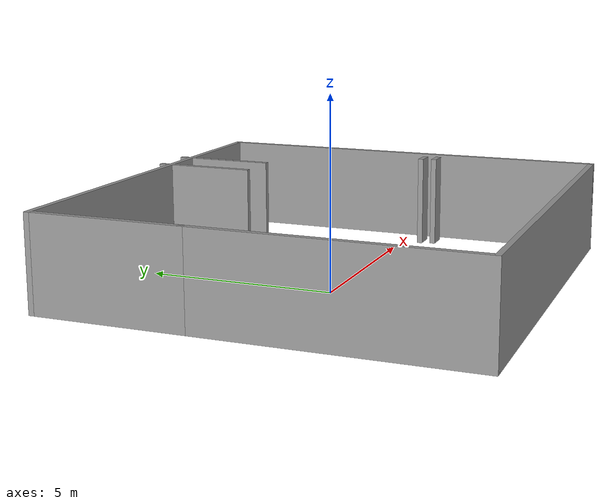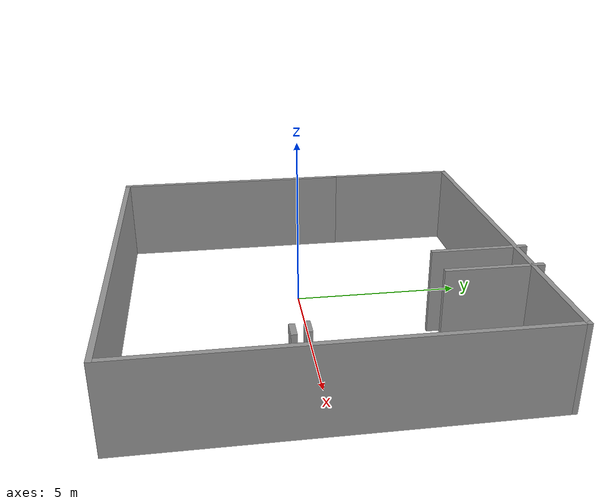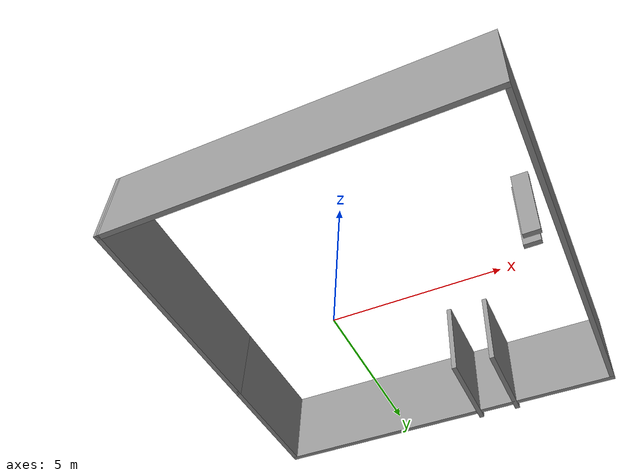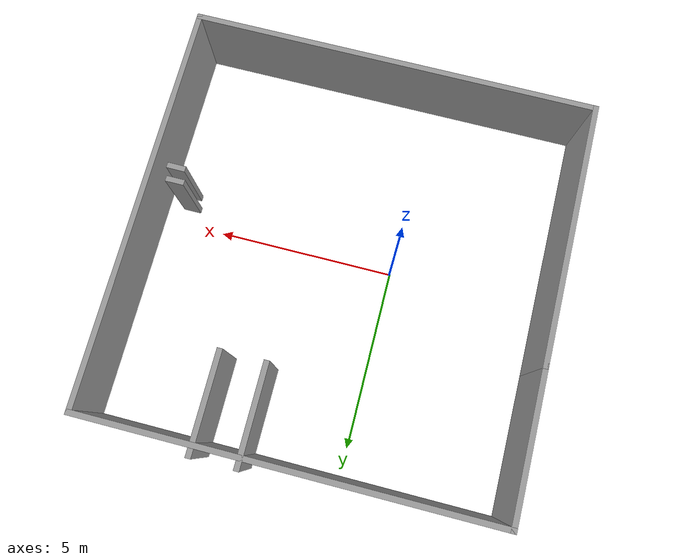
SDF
<?xml version='1.0'?>
<sdf version='1.7'>
  <model name='custom_world'>
    <pose>1.2678 0.28081 0 0 -0 0</pose>
    <link name='Wall_0'>
      <collision name='Wall_0_Collision'>
        <geometry>
          <box>
            <size>7.25 0.15 2.5</size>
          </box>
        </geometry>
        <pose>0 0 1.25 0 -0 0</pose>
      </collision>
      <visual name='Wall_0_Visual'>
        <pose>0 0 1.25 0 -0 0</pose>
        <geometry>
          <box>
            <size>7.25 0.15 2.5</size>
          </box>
        </geometry>
        <material>
          <script>
            <uri>file://media/materials/scripts/gazebo.material</uri>
            <name>Gazebo/Grey</name>
          </script>
          <ambient>1 1 1 1</ambient>
        </material>
        <meta>
          <layer>0</layer>
        </meta>
      </visual>
      <pose>-5.55 -2 0 0 -0 -1.5708</pose>
    </link>
    <link name='Wall_1'>
      <collision name='Wall_1_Collision'>
        <geometry>
          <box>
            <size>11.25 0.15 2.5</size>
          </box>
        </geometry>
        <pose>0 0 1.25 0 -0 0</pose>
      </collision>
      <visual name='Wall_1_Visual'>
        <pose>0 0 1.25 0 -0 0</pose>
        <geometry>
          <box>
            <size>11.25 0.15 2.5</size>
          </box>
        </geometry>
        <material>
          <script>
            <uri>file://media/materials/scripts/gazebo.material</uri>
            <name>Gazebo/Grey</name>
          </script>
          <ambient>1 1 1 1</ambient>
        </material>
        <meta>
          <layer>0</layer>
        </meta>
      </visual>
      <pose>-0 -5.55 0 0 -0 0</pose>
    </link>
    <link name='Wall_2'>
      <collision name='Wall_2_Collision'>
        <geometry>
          <box>
            <size>11.25 0.15 2.5</size>
          </box>
        </geometry>
        <pose>0 0 1.25 0 -0 0</pose>
      </collision>
      <visual name='Wall_2_Visual'>
        <pose>0 0 1.25 0 -0 0</pose>
        <geometry>
          <box>
            <size>11.25 0.15 2.5</size>
          </box>
        </geometry>
        <material>
          <script>
            <uri>file://media/materials/scripts/gazebo.material</uri>
            <name>Gazebo/Grey</name>
          </script>
          <ambient>1 1 1 1</ambient>
        </material>
        <meta>
          <layer>0</layer>
        </meta>
      </visual>
      <pose>5.55 0 0 0 -0 1.5708</pose>
    </link>
    <link name='Wall_3'>
      <collision name='Wall_3_Collision'>
        <geometry>
          <box>
            <size>11.25 0.15 2.5</size>
          </box>
        </geometry>
        <pose>0 0 1.25 0 -0 0</pose>
      </collision>
      <visual name='Wall_3_Visual'>
        <pose>0 0 1.25 0 -0 0</pose>
        <geometry>
          <box>
            <size>11.25 0.15 2.5</size>
          </box>
        </geometry>
        <material>
          <script>
            <uri>file://media/materials/scripts/gazebo.material</uri>
            <name>Gazebo/Grey</name>
          </script>
          <ambient>1 1 1 1</ambient>
        </material>
        <meta>
          <layer>0</layer>
        </meta>
      </visual>
      <pose>-0 5.55 0 0 -0 3.14159</pose>
    </link>
    <link name='Wall_4'>
      <collision name='Wall_4_Collision'>
        <geometry>
          <box>
            <size>4.15 0.15 2.5</size>
          </box>
        </geometry>
        <pose>0 0 1.25 0 -0 0</pose>
      </collision>
      <visual name='Wall_4_Visual'>
        <pose>0 0 1.25 0 -0 0</pose>
        <geometry>
          <box>
            <size>4.15 0.15 2.5</size>
          </box>
        </geometry>
        <material>
          <script>
            <uri>file://media/materials/scripts/gazebo.material</uri>
            <name>Gazebo/Grey</name>
          </script>
          <ambient>1 1 1 1</ambient>
        </material>
        <meta>
          <layer>0</layer>
        </meta>
      </visual>
      <pose>-5.55 3.55 0 0 -0 -1.5708</pose>
    </link>
    <link name='Wall_7'>
      <collision name='Wall_7_Collision'>
        <geometry>
          <box>
            <size>0.5 0.15 2.5</size>
          </box>
        </geometry>
        <pose>0 0 1.25 0 -0 0</pose>
      </collision>
      <visual name='Wall_7_Visual'>
        <pose>0 0 1.25 0 -0 0</pose>
        <geometry>
          <box>
            <size>0.5 0.15 2.5</size>
          </box>
        </geometry>
        <material>
          <script>
            <uri>file://media/materials/scripts/gazebo.material</uri>
            <name>Gazebo/Grey</name>
          </script>
          <ambient>1 1 1 1</ambient>
        </material>
        <meta>
          <layer>0</layer>
        </meta>
      </visual>
      <pose>4.87224 -1.16774 0 0 -0 3.14159</pose>
    </link>
    <link name='Wall_9'>
      <collision name='Wall_9_Collision'>
        <geometry>
          <box>
            <size>0.5 0.15 2.5</size>
          </box>
        </geometry>
        <pose>0 0 1.25 0 -0 0</pose>
      </collision>
      <visual name='Wall_9_Visual'>
        <pose>0 0 1.25 0 -0 0</pose>
        <geometry>
          <box>
            <size>0.5 0.15 2.5</size>
          </box>
        </geometry>
        <material>
          <script>
            <uri>file://media/materials/scripts/gazebo.material</uri>
            <name>Gazebo/Grey</name>
          </script>
          <ambient>1 1 1 1</ambient>
        </material>
        <meta>
          <layer>0</layer>
        </meta>
      </visual>
      <pose>4.79133 -0.803639 0 0 -0 3.14159</pose>
    </link>
    <link name='Wall_13'>
      <collision name='Wall_13_Collision'>
        <geometry>
          <box>
            <size>2.75 0.15 2.5</size>
          </box>
        </geometry>
        <pose>0 0 1.25 0 -0 0</pose>
      </collision>
      <visual name='Wall_13_Visual'>
        <pose>0 0 1.25 0 -0 0</pose>
        <geometry>
          <box>
            <size>2.75 0.15 2.5</size>
          </box>
        </geometry>
        <material>
          <script>
            <uri>file://media/materials/scripts/gazebo.material</uri>
            <name>Gazebo/Grey</name>
          </script>
          <ambient>1 1 1 1</ambient>
        </material>
        <meta>
          <layer>0</layer>
        </meta>
      </visual>
      <pose>2.4 4.5 0 0 -0 -1.5708</pose>
    </link>
    <link name='Wall_18'>
      <collision name='Wall_18_Collision'>
        <geometry>
          <box>
            <size>2.75 0.15 2.5</size>
          </box>
        </geometry>
        <pose>0 0 1.25 0 -0 0</pose>
      </collision>
      <visual name='Wall_18_Visual'>
        <pose>0 0 1.25 0 -0 0</pose>
        <geometry>
          <box>
            <size>2.75 0.15 2.5</size>
          </box>
        </geometry>
        <material>
          <script>
            <uri>file://media/materials/scripts/gazebo.material</uri>
            <name>Gazebo/Grey</name>
          </script>
          <ambient>1 1 1 1</ambient>
        </material>
        <meta>
          <layer>0</layer>
        </meta>
      </visual>
      <pose>1.18575 4.5 0 0 -0 -1.5708</pose>
    </link>
    <static>1</static>
  </model>
</sdf>
